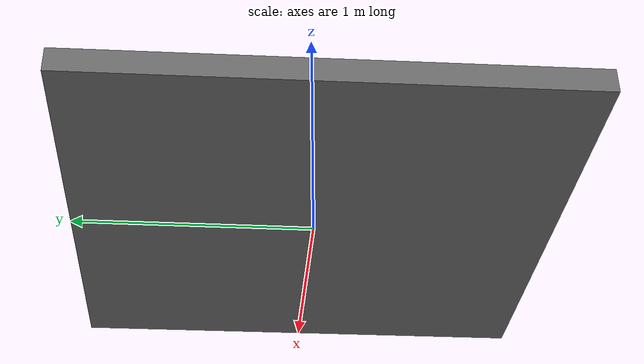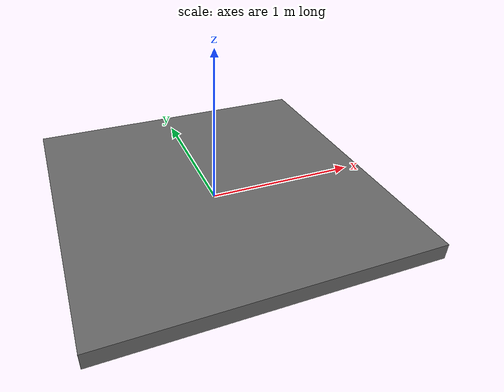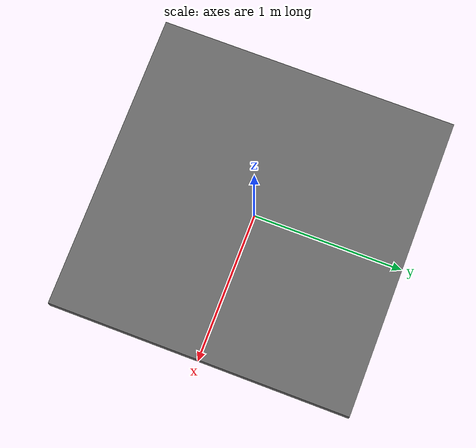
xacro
<robot name="arm_dyn" xmlns:xacro="http://wiki.ros.org/xacro">

    <!-- 机械臂参数 -->
    <xacro:property name="pi" value="3.14159265358979" />
    <xacro:property name="joint_lower" value="${-pi}" />
    <xacro:property name="joint_upper" value="${pi}" />
    <xacro:property name="M5210_effort" value="15" />
    <xacro:property name="M5210_velocity" value="1.047197551" />
    <xacro:property name="M4010_effort" value="4" />
    <xacro:property name="M4010_velocity" value="1.047197551" />
    <xacro:property name="fixed_block_high" value="0.1" />
    <xacro:property name="fixed_block_length" value="2" />
    <xacro:property name="fixed_block_wide" value="2" />

    <!-- 建立基点连杆 -->
    <link name="base_footlink">
        <!-- 可视化 -->
        <visual>
            <!-- 外观 -->
            <geometry>
                <sphere radius="0.00001" />   <!-- 球体 -->
            </geometry>
        </visual>
    </link>

    <xacro:macro name="Box_inertial_matrix" params="m l w h">
       <inertial>
            <mass value="${m}" />
            <inertia ixx="${m*(h*h + l*l)/12}" ixy = "0" ixz = "0"
                iyy="${m*(w*w + l*l)/12}" iyz= "0"
                izz="${m*(w*w + h*h)/12}" />
       </inertial>
   </xacro:macro>

    <!-- 固定块 -->
    <link name="fixed_block_link">
        <!-- 可视化 -->
        <visual>
            <!-- 外观 -->
            <geometry>
                <box size="${fixed_block_length} ${fixed_block_wide} ${fixed_block_high}" />   <!-- 导入外部模型 -->
            </geometry>
            <origin xyz="0 0 0" rpy="0 0 0" />    <!-- 连杆偏移量 -->

            <!-- 材质 -->
            <material name="">
                <color rgba="0.4 0.4 0.4 1" />    <!-- 颜色 -->
            </material>
        </visual>

        <!-- 碰撞矩阵 -->
        <collision>
            <!-- 外观 -->
            <geometry>
                <box size="${fixed_block_length} ${fixed_block_wide} ${fixed_block_high}" />
            </geometry>
            <origin xyz="0 0 0" rpy="0 0 0" />
        </collision>

        <!-- 惯性矩阵 -->
        <xacro:Box_inertial_matrix m="1000" l="${fixed_block_length}" w="${fixed_block_wide}" h="${fixed_block_high}" />
    </link>

    <!-- 建立固定块与位置基点的连接关节 -->
    <joint name="fixed_block_joint" type="fixed"> <!-- 关节标签 -->
        <parent link="base_footlink" /> <!-- 父级标签 -->
        <child link="fixed_block_link" /> <!-- 子级标签 -->
        <origin xyz="0 0 ${fixed_block_high/2}" rpy="0 0 0" /> <!-- 偏移量标签 -->
    </joint>

    <gazebo reference="fixed_block_link">
        <material>Gazebo/Black</material>
    </gazebo>
</robot>
